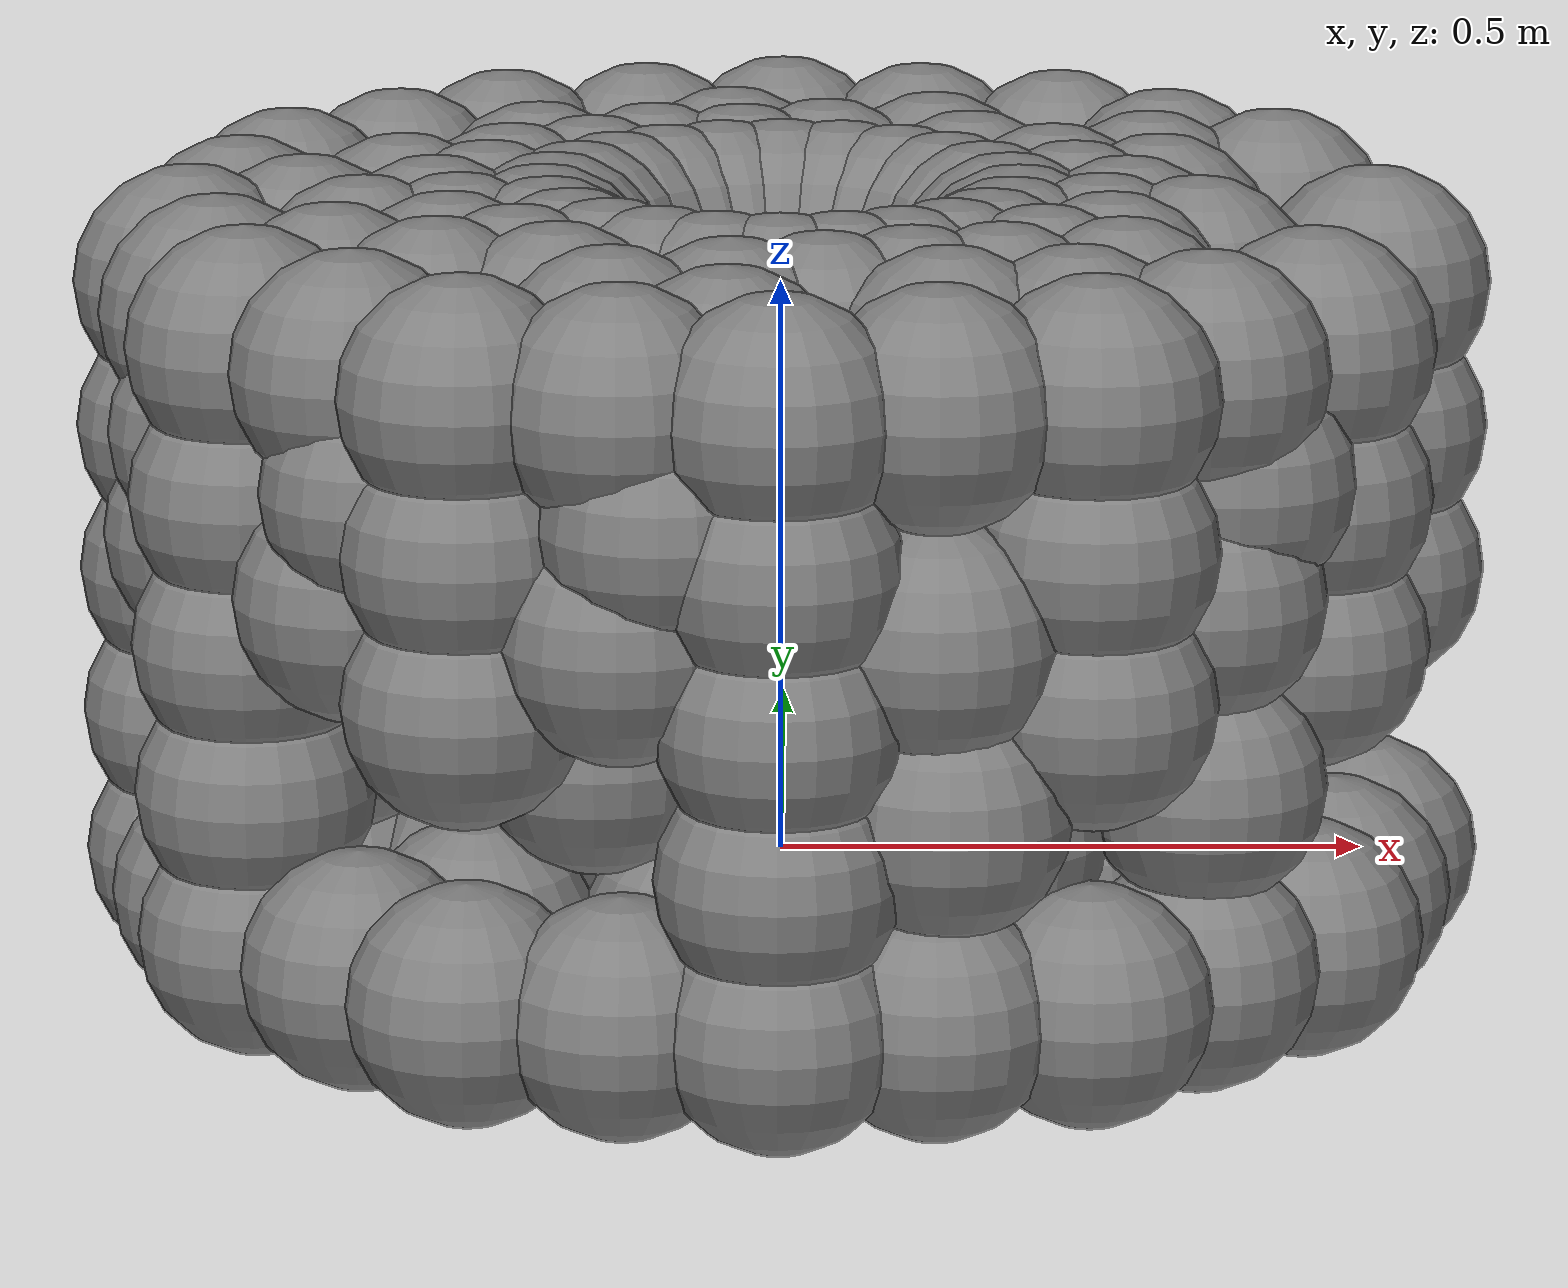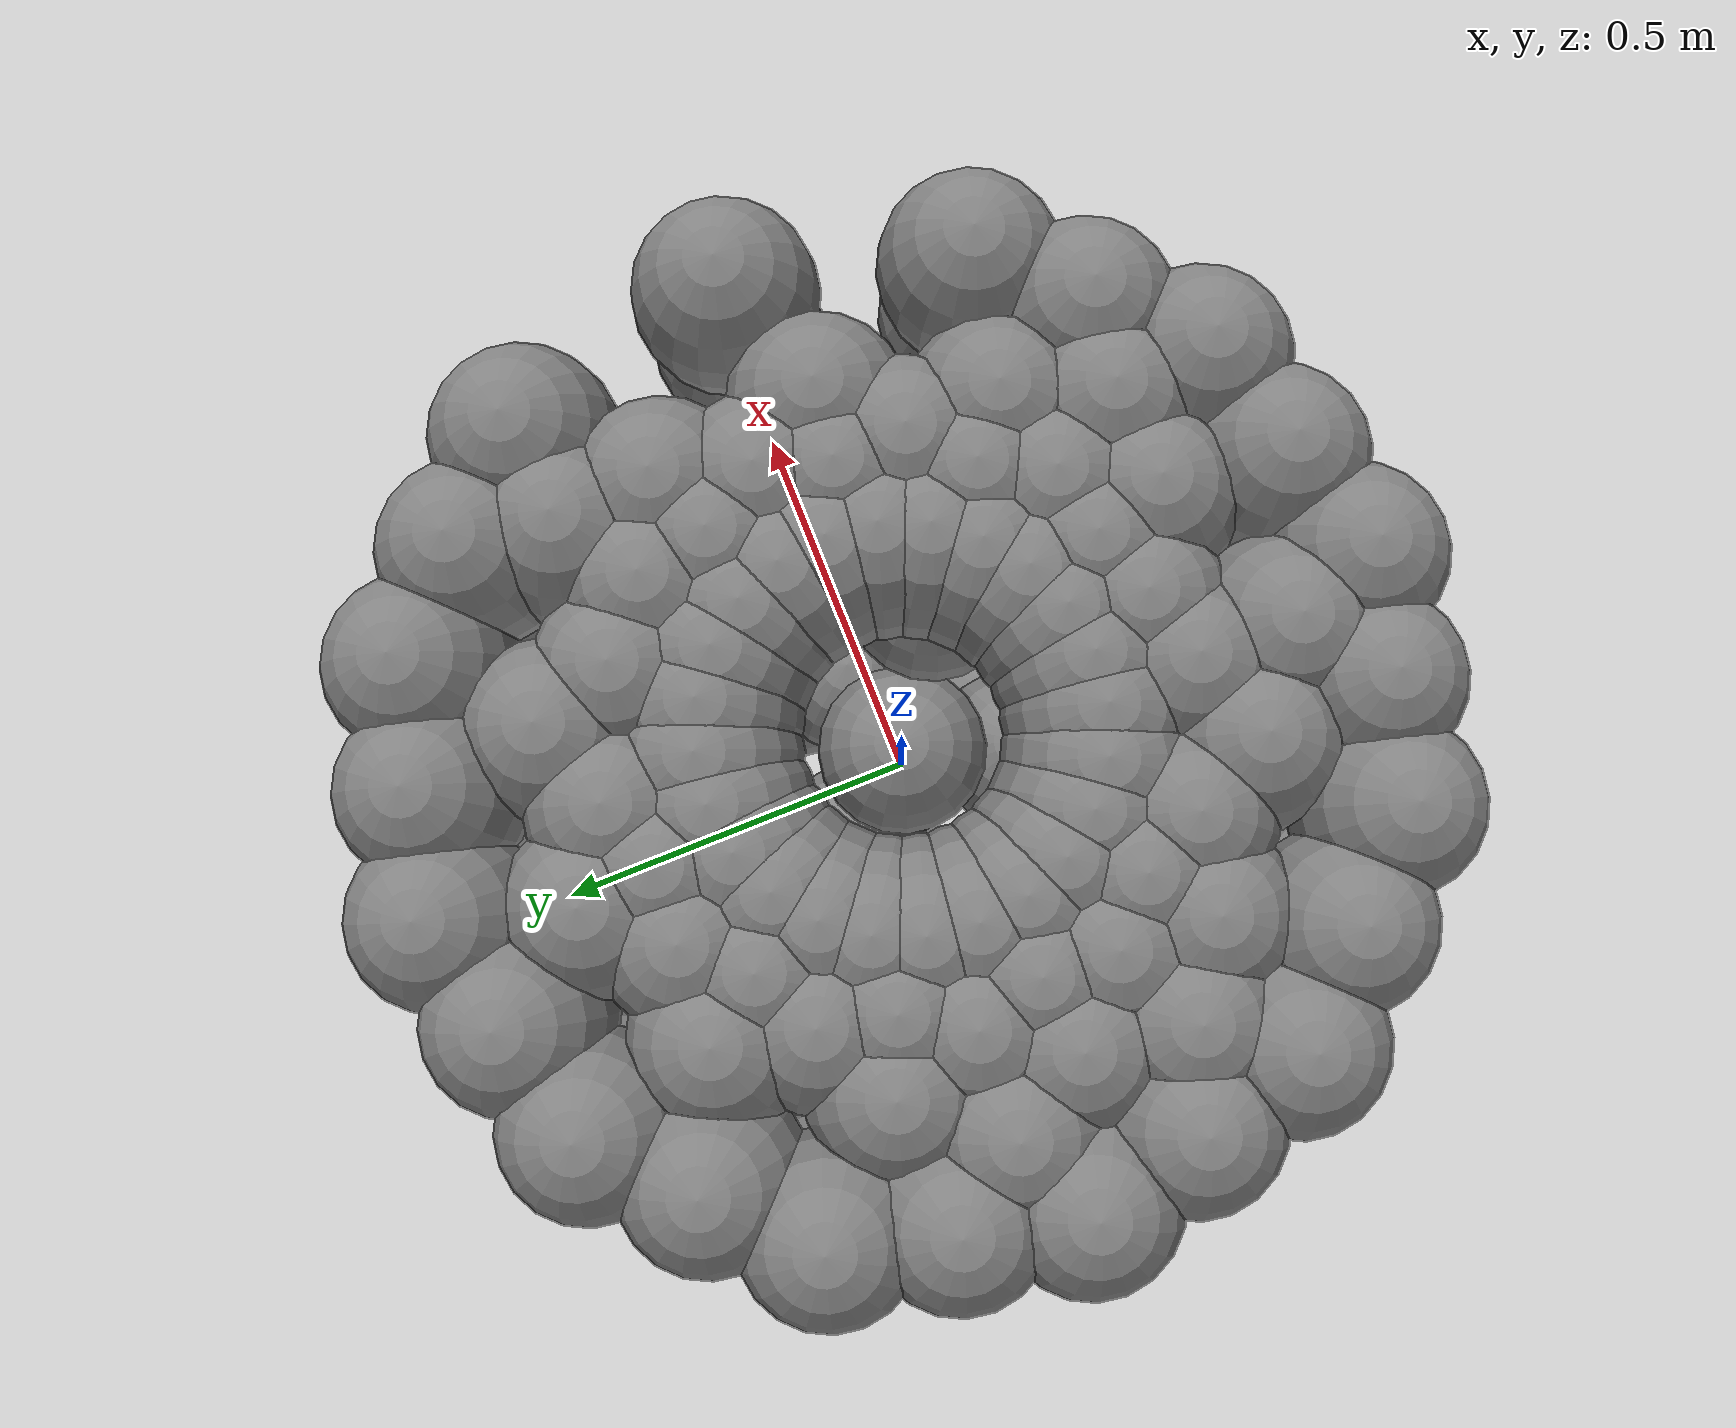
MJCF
<mujoco model="unnamed_model">
  <default>
    <default class="/"/>
  </default>
  <worldbody>
    <geom name="point_mass_0" class="/" type="sphere" size="0.10000000000000001" mass="0.01" pos="-0.17399978637695312 0.10040092468261719 0.50000041723251343"/>
    <geom name="point_mass_1" class="/" type="sphere" size="0.10000000000000001" mass="0.01" pos="0 -0 0.29800042510032654"/>
    <geom name="point_mass_2" class="/" type="sphere" size="0.10000000000000001" mass="0.01" pos="-0.14200019836425781 0.14200019836425781 0.50000041723251343"/>
    <geom name="point_mass_3" class="/" type="sphere" size="0.10000000000000001" mass="0.01" pos="-0.1939997673034668 0.052000045776367188 0.50000041723251343"/>
    <geom name="point_mass_4" class="/" type="sphere" size="0.10000000000000001" mass="0.01" pos="-0.20079994201660156 -0 0.50000041723251343"/>
    <geom name="point_mass_5" class="/" type="sphere" size="0.10000000000000001" mass="0.01" pos="-0.1939997673034668 -0.052000045776367188 0.50000041723251343"/>
    <geom name="point_mass_6" class="/" type="sphere" size="0.10000000000000001" mass="0.01" pos="-0.17399978637695312 -0.10040092468261719 0.50000041723251343"/>
    <geom name="point_mass_7" class="/" type="sphere" size="0.10000000000000001" mass="0.01" pos="-0.14200019836425781 -0.14200019836425781 0.50000041723251343"/>
    <geom name="point_mass_8" class="/" type="sphere" size="0.10000000000000001" mass="0.01" pos="-0.10039997100830078 -0.17399978637695312 0.50000041723251343"/>
    <geom name="point_mass_9" class="/" type="sphere" size="0.10000000000000001" mass="0.01" pos="-0.052000045776367188 -0.194000244140625 0.50000041723251343"/>
    <geom name="point_mass_10" class="/" type="sphere" size="0.10000000000000001" mass="0.01" pos="0 -0.20120048522949219 0.50000041723251343"/>
    <geom name="point_mass_11" class="/" type="sphere" size="0.10000000000000001" mass="0.01" pos="0.25 0.43300056457519531 0.50000041723251343"/>
    <geom name="point_mass_12" class="/" type="sphere" size="0.10000000000000001" mass="0.01" pos="0 0.5 0.50000041723251343"/>
    <geom name="point_mass_13" class="/" type="sphere" size="0.10000000000000001" mass="0.01" pos="0.052000045776367188 0.194000244140625 0.50000041723251343"/>
    <geom name="point_mass_14" class="/" type="sphere" size="0.10000000000000001" mass="0.01" pos="-0.052000045776367188 0.194000244140625 0.50000041723251343"/>
    <geom name="point_mass_15" class="/" type="sphere" size="0.10000000000000001" mass="0.01" pos="0 0.20079994201660156 0.50000041723251343"/>
    <geom name="point_mass_16" class="/" type="sphere" size="0.10000000000000001" mass="0.01" pos="-0.25 0.43300056457519531 0.50000041723251343"/>
    <geom name="point_mass_17" class="/" type="sphere" size="0.10000000000000001" mass="0.01" pos="-0.10039997100830078 0.17399978637695312 0.50000041723251343"/>
    <geom name="point_mass_18" class="/" type="sphere" size="0.10000000000000001" mass="0.01" pos="-0.43300008773803711 0.25 0.50000041723251343"/>
    <geom name="point_mass_19" class="/" type="sphere" size="0.10000000000000001" mass="0.01" pos="-0.5 -0 0.50000041723251343"/>
    <geom name="point_mass_20" class="/" type="sphere" size="0.10000000000000001" mass="0.01" pos="-0.43300008773803711 -0.25 0.50000041723251343"/>
    <geom name="point_mass_21" class="/" type="sphere" size="0.10000000000000001" mass="0.01" pos="-0.25 -0.43300056457519531 0.50000041723251343"/>
    <geom name="point_mass_22" class="/" type="sphere" size="0.10000000000000001" mass="0.01" pos="0 -0.5 0.50000041723251343"/>
    <geom name="point_mass_23" class="/" type="sphere" size="0.10000000000000001" mass="0.01" pos="0.25 -0.43300056457519531 0.50000041723251343"/>
    <geom name="point_mass_24" class="/" type="sphere" size="0.10000000000000001" mass="0.01" pos="0.052000045776367188 -0.194000244140625 0.50000041723251343"/>
    <geom name="point_mass_25" class="/" type="sphere" size="0.10000000000000001" mass="0.01" pos="0.25 -0.43300056457519531 4.1723251342773438e-07"/>
    <geom name="point_mass_26" class="/" type="sphere" size="0.10000000000000001" mass="0.01" pos="0 -0.5 4.1723251342773438e-07"/>
    <geom name="point_mass_27" class="/" type="sphere" size="0.10000000000000001" mass="0.01" pos="-0.25 -0.43300056457519531 4.1723251342773438e-07"/>
    <geom name="point_mass_28" class="/" type="sphere" size="0.10000000000000001" mass="0.01" pos="-0.43300008773803711 -0.25 4.1723251342773438e-07"/>
    <geom name="point_mass_29" class="/" type="sphere" size="0.10000000000000001" mass="0.01" pos="-0.5 -0 4.1723251342773438e-07"/>
    <geom name="point_mass_30" class="/" type="sphere" size="0.10000000000000001" mass="0.01" pos="-0.43300008773803711 0.25 4.1723251342773438e-07"/>
    <geom name="point_mass_31" class="/" type="sphere" size="0.10000000000000001" mass="0.01" pos="-0.25 0.43300056457519531 4.1723251342773438e-07"/>
    <geom name="point_mass_32" class="/" type="sphere" size="0.10000000000000001" mass="0.01" pos="0 0.5 4.1723251342773438e-07"/>
    <geom name="point_mass_33" class="/" type="sphere" size="0.10000000000000001" mass="0.01" pos="0.25 0.43300056457519531 4.1723251342773438e-07"/>
    <geom name="point_mass_34" class="/" type="sphere" size="0.10000000000000001" mass="0.01" pos="0.43300008773803711 0.25 4.1723251342773438e-07"/>
    <geom name="point_mass_35" class="/" type="sphere" size="0.10000000000000001" mass="0.01" pos="0.5 -0 4.1723251342773438e-07"/>
    <geom name="point_mass_36" class="/" type="sphere" size="0.10000000000000001" mass="0.01" pos="0.43300008773803711 -0.25 4.1723251342773438e-07"/>
    <geom name="point_mass_37" class="/" type="sphere" size="0.10000000000000001" mass="0.01" pos="0.10039997100830078 -0.17399978637695312 0.50000041723251343"/>
    <geom name="point_mass_38" class="/" type="sphere" size="0.10000000000000001" mass="0.01" pos="0.43300008773803711 -0.25 0.50000041723251343"/>
    <geom name="point_mass_39" class="/" type="sphere" size="0.10000000000000001" mass="0.01" pos="0.14200019836425781 -0.14200019836425781 0.50000041723251343"/>
    <geom name="point_mass_40" class="/" type="sphere" size="0.10000000000000001" mass="0.01" pos="0.17399978637695312 -0.10040092468261719 0.50000041723251343"/>
    <geom name="point_mass_41" class="/" type="sphere" size="0.10000000000000001" mass="0.01" pos="0.1939997673034668 -0.052000045776367188 0.50000041723251343"/>
    <geom name="point_mass_42" class="/" type="sphere" size="0.10000000000000001" mass="0.01" pos="0.5 -0 0.50000041723251343"/>
    <geom name="point_mass_43" class="/" type="sphere" size="0.10000000000000001" mass="0.01" pos="0.20079994201660156 -0 0.50000041723251343"/>
    <geom name="point_mass_44" class="/" type="sphere" size="0.10000000000000001" mass="0.01" pos="0.43300008773803711 0.25 0.50000041723251343"/>
    <geom name="point_mass_45" class="/" type="sphere" size="0.10000000000000001" mass="0.01" pos="0.1939997673034668 0.052000045776367188 0.50000041723251343"/>
    <geom name="point_mass_46" class="/" type="sphere" size="0.10000000000000001" mass="0.01" pos="0.17399978637695312 0.10040092468261719 0.50000041723251343"/>
    <geom name="point_mass_47" class="/" type="sphere" size="0.10000000000000001" mass="0.01" pos="0.14200019836425781 0.14200019836425781 0.50000041723251343"/>
    <geom name="point_mass_48" class="/" type="sphere" size="0.10000000000000001" mass="0.01" pos="0.10039997100830078 0.17399978637695312 0.50000041723251343"/>
    <geom name="point_mass_49" class="/" type="sphere" size="0.10000000000000001" mass="0.01" pos="0 -0 4.1723251342773438e-07"/>
    <geom name="point_mass_50" class="/" type="sphere" size="0.10000000000000001" mass="0.01" pos="-0.046006792679451465 0.35039997100830078 0.50000041723251343"/>
    <geom name="point_mass_51" class="/" type="sphere" size="0.10000000000000001" mass="0.01" pos="-0.2153032480662207 0.28033634838766525 0.50000041723251343"/>
    <geom name="point_mass_52" class="/" type="sphere" size="0.10000000000000001" mass="0.01" pos="-0.32663839640170034 0.13514093703698343 0.50000041723251343"/>
    <geom name="point_mass_53" class="/" type="sphere" size="0.10000000000000001" mass="0.01" pos="-0.35039997100830078 -0.046008226857323364 0.50000041723251343"/>
    <geom name="point_mass_54" class="/" type="sphere" size="0.10000000000000001" mass="0.01" pos="-0.28033539327304835 -0.21530514753628865 0.50000041723251343"/>
    <geom name="point_mass_55" class="/" type="sphere" size="0.10000000000000001" mass="0.01" pos="-0.13514256726788931 -0.32663752267311807 0.50000041723251343"/>
    <geom name="point_mass_56" class="/" type="sphere" size="0.10000000000000001" mass="0.01" pos="0.13514256726788937 -0.32663752267311807 0.50000041723251343"/>
    <geom name="point_mass_57" class="/" type="sphere" size="0.10000000000000001" mass="0.01" pos="0.28033539327304829 -0.21530514753628865 0.50000041723251343"/>
    <geom name="point_mass_58" class="/" type="sphere" size="0.10000000000000001" mass="0.01" pos="0.35039997100830078 -0.046008226857323364 0.50000041723251343"/>
    <geom name="point_mass_59" class="/" type="sphere" size="0.10000000000000001" mass="0.01" pos="0.32663839640170034 0.13514093703698343 0.50000041723251343"/>
    <geom name="point_mass_60" class="/" type="sphere" size="0.10000000000000001" mass="0.01" pos="0.13514256726788931 0.32663752267311807 0.50000041723251343"/>
    <geom name="point_mass_61" class="/" type="sphere" size="0.10000000000000001" mass="0.01" pos="-0.11367124197062077 0.27467818497706259 0.50000041723251343"/>
    <geom name="point_mass_62" class="/" type="sphere" size="0.10000000000000001" mass="0.01" pos="0.038707324138498589 0.29457797638501937 0.50000041723251343"/>
    <geom name="point_mass_63" class="/" type="sphere" size="0.10000000000000001" mass="0.01" pos="-0.23567601892933199 0.18095162514451751 0.50000041723251343"/>
    <geom name="point_mass_64" class="/" type="sphere" size="0.10000000000000001" mass="0.01" pos="-0.27467726347596999 -0.11366980488156189 0.50000041723251343"/>
    <geom name="point_mass_65" class="/" type="sphere" size="0.10000000000000001" mass="0.01" pos="-0.29457911808534953 0.038708395735159551 0.50000041723251343"/>
    <geom name="point_mass_66" class="/" type="sphere" size="0.10000000000000001" mass="0.01" pos="-0.18095029999982984 -0.23567669685270559 0.50000041723251343"/>
    <geom name="point_mass_67" class="/" type="sphere" size="0.10000000000000001" mass="0.01" pos="-0.039387370425241076 -0.29428361128182629 0.50000041723251343"/>
    <geom name="point_mass_68" class="/" type="sphere" size="0.10000000000000001" mass="0.01" pos="0.18095029999982981 -0.23567669685270559 0.50000041723251343"/>
    <geom name="point_mass_69" class="/" type="sphere" size="0.10000000000000001" mass="0.01" pos="0.27467726347597005 -0.11366980488156191 0.50000041723251343"/>
    <geom name="point_mass_70" class="/" type="sphere" size="0.10000000000000001" mass="0.01" pos="0.29457911808534953 0.038708395735159551 0.50000041723251343"/>
    <geom name="point_mass_71" class="/" type="sphere" size="0.10000000000000001" mass="0.01" pos="0.23590014760401767 0.18112403260784635 0.50000041723251343"/>
    <geom name="point_mass_72" class="/" type="sphere" size="0.10000000000000001" mass="0.01" pos="0.036218906725356506 -0.27140100840766657 0.50000041723251343"/>
    <geom name="point_mass_73" class="/" type="sphere" size="0.10000000000000001" mass="0.01" pos="0.5 0 0.25000041723251343"/>
    <geom name="point_mass_74" class="/" type="sphere" size="0.10000000000000001" mass="0.01" pos="0 -0.5 0.25000041723251343"/>
    <geom name="point_mass_75" class="/" type="sphere" size="0.10000000000000001" mass="0.01" pos="0.25 -0.43300056457519531 0.25000041723251343"/>
    <geom name="point_mass_76" class="/" type="sphere" size="0.10000000000000001" mass="0.01" pos="0.43300008773803711 -0.25 0.25000041723251343"/>
    <geom name="point_mass_77" class="/" type="sphere" size="0.10000000000000001" mass="0.01" pos="-0.43300008773803711 -0.25 0.25000041723251343"/>
    <geom name="point_mass_78" class="/" type="sphere" size="0.10000000000000001" mass="0.01" pos="0 0.5 0.25000041723251343"/>
    <geom name="point_mass_79" class="/" type="sphere" size="0.10000000000000001" mass="0.01" pos="0 -0.5 0.37500041723251343"/>
    <geom name="point_mass_80" class="/" type="sphere" size="0.10000000000000001" mass="0.01" pos="-0.25 -0.43300056457519531 0.25000041723251343"/>
    <geom name="point_mass_81" class="/" type="sphere" size="0.10000000000000001" mass="0.01" pos="0.25 -0.06697806422425856 4.1723251342773438e-07"/>
    <geom name="point_mass_82" class="/" type="sphere" size="0.10000000000000001" mass="0.01" pos="0.25 -0.43300056457519531 0.37500041723251343"/>
    <geom name="point_mass_83" class="/" type="sphere" size="0.10000000000000001" mass="0.01" pos="0.30185124873372587 -0.048421909450381745 0.23835195604629147"/>
    <geom name="point_mass_84" class="/" type="sphere" size="0.10000000000000001" mass="0.01" pos="-0.066978413269680459 -0.25 4.1723251342773438e-07"/>
    <geom name="point_mass_85" class="/" type="sphere" size="0.10000000000000001" mass="0.01" pos="-0.25 0.43300056457519531 0.25000041723251343"/>
    <geom name="point_mass_86" class="/" type="sphere" size="0.10000000000000001" mass="0.01" pos="0.25 0.43300056457519531 0.25000041723251343"/>
    <geom name="point_mass_87" class="/" type="sphere" size="0.10000000000000001" mass="0.01" pos="0.14048084713118317 0.24599430502304362 0.31253447826443592"/>
    <geom name="point_mass_88" class="/" type="sphere" size="0.10000000000000001" mass="0.01" pos="-0.43300008773803711 0.25 0.25000041723251343"/>
    <geom name="point_mass_89" class="/" type="sphere" size="0.10000000000000001" mass="0.01" pos="0.125 0.46650028228759766 0.50000041723251343"/>
    <geom name="point_mass_90" class="/" type="sphere" size="0.10000000000000001" mass="0.01" pos="0.061544966929866385 -0.29411055851237344 0.23271466600284749"/>
    <geom name="point_mass_91" class="/" type="sphere" size="0.10000000000000001" mass="0.01" pos="-0.25 -0.06697806422425856 4.1723251342773438e-07"/>
    <geom name="point_mass_92" class="/" type="sphere" size="0.10000000000000001" mass="0.01" pos="-0.2483910671288086 -0.20960668491366699 0.20350259953853292"/>
    <geom name="point_mass_93" class="/" type="sphere" size="0.10000000000000001" mass="0.01" pos="-0.125 -0.46650028228759766 0.31250041723251343"/>
    <geom name="point_mass_94" class="/" type="sphere" size="0.10000000000000001" mass="0.01" pos="-0.5 0 0.25000041723251343"/>
    <geom name="point_mass_95" class="/" type="sphere" size="0.10000000000000001" mass="0.01" pos="-0.46650004386901855 0.125 0.50000041723251343"/>
    <geom name="point_mass_96" class="/" type="sphere" size="0.10000000000000001" mass="0.01" pos="-0.18300307924651532 0.18301125017546838 4.1723251342773438e-07"/>
    <geom name="point_mass_97" class="/" type="sphere" size="0.10000000000000001" mass="0.01" pos="-0.125 -0.46650028228759766 0.50000041723251343"/>
    <geom name="point_mass_98" class="/" type="sphere" size="0.10000000000000001" mass="0.01" pos="0.27915343052789471 0.10185704385383516 0.35566878252078687"/>
    <geom name="point_mass_99" class="/" type="sphere" size="0.10000000000000001" mass="0.01" pos="-0.125 0.46650028228759766 0.50000041723251343"/>
    <geom name="point_mass_100" class="/" type="sphere" size="0.10000000000000001" mass="0.01" pos="-0.18656583487688627 0.25694559016968083 0.23137796589600651"/>
    <geom name="point_mass_101" class="/" type="sphere" size="0.10000000000000001" mass="0.01" pos="0.25 0.43300056457519531 0.37500041723251343"/>
    <geom name="point_mass_102" class="/" type="sphere" size="0.10000000000000001" mass="0.01" pos="0.43300008773803711 0.25 0.25000041723251343"/>
    <geom name="point_mass_103" class="/" type="sphere" size="0.10000000000000001" mass="0.01" pos="-0.33462738825646393 -0.029508607362558927 0.3030344603008458"/>
    <geom name="point_mass_104" class="/" type="sphere" size="0.10000000000000001" mass="0.01" pos="-0.26616674486294822 0.12235988503274363 0.3645973065620981"/>
    <geom name="point_mass_105" class="/" type="sphere" size="0.10000000000000001" mass="0.01" pos="0.5 0 0.37500041723251343"/>
    <geom name="point_mass_106" class="/" type="sphere" size="0.10000000000000001" mass="0.01" pos="-0.43300008773803711 -0.25 0.37500041723251343"/>
    <geom name="point_mass_107" class="/" type="sphere" size="0.10000000000000001" mass="0.01" pos="-0.25 0.43300056457519531 0.37500041723251343"/>
    <geom name="point_mass_108" class="/" type="sphere" size="0.10000000000000001" mass="0.01" pos="-0.048635521141228572 0.32713382996288543 0.33053548944177769"/>
    <geom name="point_mass_109" class="/" type="sphere" size="0.10000000000000001" mass="0.01" pos="-0.125 0.46650028228759766 4.1723251342773438e-07"/>
    <geom name="point_mass_110" class="/" type="sphere" size="0.10000000000000001" mass="0.01" pos="-0.34150004386901855 0.34150028228759766 4.1723251342773438e-07"/>
    <geom name="point_mass_111" class="/" type="sphere" size="0.10000000000000001" mass="0.01" pos="0.43300008773803711 -0.25 0.37500041723251343"/>
    <geom name="point_mass_112" class="/" type="sphere" size="0.10000000000000001" mass="0.01" pos="-0.13267917051255457 -0.29636534646534873 0.37628018878906422"/>
    <geom name="point_mass_113" class="/" type="sphere" size="0.10000000000000001" mass="0.01" pos="-0.125 -0.46650028228759766 4.1723251342773438e-07"/>
    <geom name="point_mass_114" class="/" type="sphere" size="0.10000000000000001" mass="0.01" pos="-0.091655939120261376 -0.47543641530244884 0.40625041723251343"/>
    <geom name="point_mass_115" class="/" type="sphere" size="0.10000000000000001" mass="0.01" pos="0.06698129385276666 0.250010748534924 4.1723251342773438e-07"/>
    <geom name="point_mass_116" class="/" type="sphere" size="0.10000000000000001" mass="0.01" pos="-0.25 -0.43300056457519531 0.37500041723251343"/>
    <geom name="point_mass_117" class="/" type="sphere" size="0.10000000000000001" mass="0.01" pos="0.15300691170806793 -0.20567579789130372 0.40050026486228935"/>
    <geom name="point_mass_118" class="/" type="sphere" size="0.10000000000000001" mass="0.01" pos="-0.34150004386901855 -0.34150028228759766 0.31250041723251343"/>
    <geom name="point_mass_119" class="/" type="sphere" size="0.10000000000000001" mass="0.01" pos="0.15849043992446235 0.091516222639368039 4.1723251342773438e-07"/>
    <geom name="point_mass_120" class="/" type="sphere" size="0.10000000000000001" mass="0.01" pos="0.43300008773803711 0.25 0.37500041723251343"/>
    <geom name="point_mass_121" class="/" type="sphere" size="0.10000000000000001" mass="0.01" pos="0.24997902031551902 0.25000283914411886 4.1723251342773438e-07"/>
    <geom name="point_mass_122" class="/" type="sphere" size="0.10000000000000001" mass="0.01" pos="0.32983866378539423 -0.015704334851889518 0.41416091760758583"/>
    <geom name="point_mass_123" class="/" type="sphere" size="0.10000000000000001" mass="0.01" pos="0.46650004386901855 -0.125 4.1723251342773438e-07"/>
    <geom name="point_mass_124" class="/" type="sphere" size="0.10000000000000001" mass="0.01" pos="-0.065927499781213483 0.22096780423581194 0.42344966344483509"/>
    <geom name="point_mass_125" class="/" type="sphere" size="0.10000000000000001" mass="0.01" pos="-0.46650004386901855 0.125 4.1723251342773438e-07"/>
    <geom name="point_mass_126" class="/" type="sphere" size="0.10000000000000001" mass="0.01" pos="-0.34150004386901855 -0.34150028228759766 0.50000041723251343"/>
    <geom name="point_mass_127" class="/" type="sphere" size="0.10000000000000001" mass="0.01" pos="-0.5 0 0.37500041723251343"/>
    <geom name="point_mass_128" class="/" type="sphere" size="0.10000000000000001" mass="0.01" pos="-0.20332269923483237 -0.14957952092914109 0.39690700147477909"/>
    <geom name="point_mass_129" class="/" type="sphere" size="0.10000000000000001" mass="0.01" pos="-0.035627232806304851 0.27042589637991332 0.50000041723251343"/>
    <geom name="point_mass_130" class="/" type="sphere" size="0.10000000000000001" mass="0.01" pos="-0.34150004386901855 0.34150028228759766 0.15848953660599818"/>
    <geom name="point_mass_131" class="/" type="sphere" size="0.10000000000000001" mass="0.01" pos="-0.46650004386901855 -0.125 0.50000041723251343"/>
    <geom name="point_mass_132" class="/" type="sphere" size="0.10000000000000001" mass="0.01" pos="0.012185737014228247 -0.37502864754956966 0.38730613974787664"/>
    <geom name="point_mass_133" class="/" type="sphere" size="0.10000000000000001" mass="0.01" pos="-0.14715703709616207 -0.34779066353562615 0.18735159660557571"/>
    <geom name="point_mass_134" class="/" type="sphere" size="0.10000000000000001" mass="0.01" pos="-0.24998925050385878 -0.2499897273684053 4.1723251342773438e-07"/>
    <geom name="point_mass_135" class="/" type="sphere" size="0.10000000000000001" mass="0.01" pos="0.011901984736698776 -0.21398376225104337 0.41235318530618681"/>
    <geom name="point_mass_136" class="/" type="sphere" size="0.10000000000000001" mass="0.01" pos="0.2521885546022205 0.1045388282905996 0.50000041723251343"/>
    <geom name="point_mass_137" class="/" type="sphere" size="0.10000000000000001" mass="0.01" pos="0.21656321400068396 -0.16603044770777381 0.50000041723251343"/>
    <geom name="point_mass_138" class="/" type="sphere" size="0.10000000000000001" mass="0.01" pos="-0.34150004386901855 -0.34150028228759766 4.1723251342773438e-07"/>
    <geom name="point_mass_139" class="/" type="sphere" size="0.10000000000000001" mass="0.01" pos="-0.31709558449632125 -0.36590480525017188 0.40625041723251343"/>
    <geom name="point_mass_140" class="/" type="sphere" size="0.10000000000000001" mass="0.01" pos="-0.3102507798611242 0.08314130854193795 4.1723251342773438e-07"/>
    <geom name="point_mass_141" class="/" type="sphere" size="0.10000000000000001" mass="0.01" pos="-0.2165632140006839 -0.16603044770777384 0.50000041723251343"/>
    <geom name="point_mass_142" class="/" type="sphere" size="0.10000000000000001" mass="0.01" pos="-0.077949604831849317 0.10187742610530688 0.15837063636025531"/>
    <geom name="point_mass_143" class="/" type="sphere" size="0.10000000000000001" mass="0.01" pos="0.28019752497711514 0.14819938812700345 0.13276698245553323"/>
    <geom name="point_mass_144" class="/" type="sphere" size="0.10000000000000001" mass="0.01" pos="-0.040490275912114113 -0.40112361295615462 0.50000041723251343"/>
    <geom name="point_mass_145" class="/" type="sphere" size="0.10000000000000001" mass="0.01" pos="-0.43300008773803711 0.25 0.37500041723251343"/>
    <geom name="point_mass_146" class="/" type="sphere" size="0.10000000000000001" mass="0.01" pos="0.27042519606046844 -0.03562567586965306 0.50000041723251343"/>
    <geom name="point_mass_147" class="/" type="sphere" size="0.10000000000000001" mass="0.01" pos="-0.30651910711443259 0.13352528432489497 0.15057377292880622"/>
    <geom name="point_mass_148" class="/" type="sphere" size="0.10000000000000001" mass="0.01" pos="-0.22350577485463427 0.0078114059321164331 0.43224787193729547"/>
    <geom name="point_mass_149" class="/" type="sphere" size="0.10000000000000001" mass="0.01" pos="-0.27042519606046844 -0.035625675869653067 0.50000041723251343"/>
    <geom name="point_mass_150" class="/" type="sphere" size="0.10000000000000001" mass="0.01" pos="0.31021404476424197 -0.16768278292282734 0.37528430620757247"/>
    <geom name="point_mass_151" class="/" type="sphere" size="0.10000000000000001" mass="0.01" pos="-0.22838543658307733 0.23897571537659679 0.43094606020797477"/>
    <geom name="point_mass_152" class="/" type="sphere" size="0.10000000000000001" mass="0.01" pos="-0.34150004386901855 0.34150028228759766 0.31250041723251343"/>
    <geom name="point_mass_153" class="/" type="sphere" size="0.10000000000000001" mass="0.01" pos="0.34150004386901855 0.34150028228759766 4.1723251342773438e-07"/>
    <geom name="point_mass_154" class="/" type="sphere" size="0.10000000000000001" mass="0.01" pos="-0.29591239745295012 -0.0877617495251313 0.41816024148779135"/>
    <geom name="point_mass_155" class="/" type="sphere" size="0.10000000000000001" mass="0.01" pos="-0.36761792595102144 -0.014693714952335494 0.42420584234848335"/>
    <geom name="point_mass_156" class="/" type="sphere" size="0.10000000000000001" mass="0.01" pos="0.192589316843716 -0.32818563445989501 0.29392439624985117"/>
    <geom name="point_mass_157" class="/" type="sphere" size="0.10000000000000001" mass="0.01" pos="0.34150004386901855 -0.34150028228759766 0.31250041723251343"/>
    <geom name="point_mass_158" class="/" type="sphere" size="0.10000000000000001" mass="0.01" pos="0.34150004386901855 -0.34150028228759766 4.1723251342773438e-07"/>
    <geom name="point_mass_159" class="/" type="sphere" size="0.10000000000000001" mass="0.01" pos="0.14434265221497738 -0.24998931439972694 4.1723251342773438e-07"/>
    <geom name="point_mass_160" class="/" type="sphere" size="0.10000000000000001" mass="0.01" pos="0.125 -0.46650028228759766 4.1723251342773438e-07"/>
    <geom name="point_mass_161" class="/" type="sphere" size="0.10000000000000001" mass="0.01" pos="0 0.5 0.37500041723251343"/>
    <geom name="point_mass_162" class="/" type="sphere" size="0.10000000000000001" mass="0.01" pos="0.125 -0.46650028228759766 0.31250041723251343"/>
    <geom name="point_mass_163" class="/" type="sphere" size="0.10000000000000001" mass="0.01" pos="-0.34150004386901855 0.34150028228759766 0.50000041723251343"/>
    <geom name="point_mass_164" class="/" type="sphere" size="0.10000000000000001" mass="0.01" pos="0.34455894067990395 -0.33844137750624803 0.15625041723251343"/>
    <geom name="point_mass_165" class="/" type="sphere" size="0.10000000000000001" mass="0.01" pos="0.34150004386901855 -0.34150028228759766 0.50000041723251343"/>
    <geom name="point_mass_166" class="/" type="sphere" size="0.10000000000000001" mass="0.01" pos="0.22775673366864785 -0.19943081508245966 0.16835977836037641"/>
    <geom name="point_mass_167" class="/" type="sphere" size="0.10000000000000001" mass="0.01" pos="0.125 -0.46650028228759766 0.50000041723251343"/>
    <geom name="point_mass_168" class="/" type="sphere" size="0.10000000000000001" mass="0.01" pos="0.36590450324171586 -0.31709575932502343 0.40625041723251343"/>
    <geom name="point_mass_169" class="/" type="sphere" size="0.10000000000000001" mass="0.01" pos="0.10731714221117274 -0.24840393440834363 0.50000041723251343"/>
    <geom name="point_mass_170" class="/" type="sphere" size="0.10000000000000001" mass="0.01" pos="0.23918908898826413 -0.32202042686793747 0.50000041723251343"/>
    <geom name="point_mass_171" class="/" type="sphere" size="0.10000000000000001" mass="0.01" pos="0.125 0.46650028228759766 0.31250041723251343"/>
    <geom name="point_mass_172" class="/" type="sphere" size="0.10000000000000001" mass="0.01" pos="-0.46650004386901855 -0.125 0.31250041723251343"/>
    <geom name="point_mass_173" class="/" type="sphere" size="0.10000000000000001" mass="0.01" pos="-0.4575638398024271 -0.15834408868944422 0.40625041723251343"/>
    <geom name="point_mass_174" class="/" type="sphere" size="0.10000000000000001" mass="0.01" pos="-0.34245455173730055 -0.15842940603108774 0.32391110848549021"/>
    <geom name="point_mass_175" class="/" type="sphere" size="0.10000000000000001" mass="0.01" pos="-0.46650004386901855 -0.125 4.1723251342773438e-07"/>
    <geom name="point_mass_176" class="/" type="sphere" size="0.10000000000000001" mass="0.01" pos="0.23629660966907362 -0.27462693726994869 0.42470309186949839"/>
    <geom name="point_mass_177" class="/" type="sphere" size="0.10000000000000001" mass="0.01" pos="0.14851740927580265 -0.09588853655219616 0.36404697292219723"/>
    <geom name="point_mass_178" class="/" type="sphere" size="0.10000000000000001" mass="0.01" pos="-0.5 0 0.12500041723251343"/>
    <geom name="point_mass_179" class="/" type="sphere" size="0.10000000000000001" mass="0.01" pos="0.12255675823692443 0.023026851766605273 0.16467787529098826"/>
    <geom name="point_mass_180" class="/" type="sphere" size="0.10000000000000001" mass="0.01" pos="0.24251137197688977 0.031899367682003792 0.42702123667596609"/>
    <geom name="point_mass_181" class="/" type="sphere" size="0.10000000000000001" mass="0.01" pos="-0.43300008773803711 -0.25 0.12500041723251343"/>
    <geom name="point_mass_182" class="/" type="sphere" size="0.10000000000000001" mass="0.01" pos="0.13401793475456869 -0.31893062436476949 0.41712161357456823"/>
    <geom name="point_mass_183" class="/" type="sphere" size="0.10000000000000001" mass="0.01" pos="-0.043812754958790785 -0.13349485526098376 0.20319690817740446"/>
    <geom name="point_mass_184" class="/" type="sphere" size="0.10000000000000001" mass="0.01" pos="-0.36648590598240249 -0.11303459189986975 0.15559131729199804"/>
    <geom name="point_mass_185" class="/" type="sphere" size="0.10000000000000001" mass="0.01" pos="-0.21940408412009305 -0.020755933524956433 0.25822938789145872"/>
    <geom name="point_mass_186" class="/" type="sphere" size="0.10000000000000001" mass="0.01" pos="0.16613287096349963 -0.35445371587778463 0.11876723665896759"/>
    <geom name="point_mass_187" class="/" type="sphere" size="0.10000000000000001" mass="0.01" pos="0.22414263447257632 -0.095438987621704413 0.43063531985166881"/>
    <geom name="point_mass_188" class="/" type="sphere" size="0.10000000000000001" mass="0.01" pos="-0.36821996339605684 -0.15943736757633695 0.50000041723251343"/>
    <geom name="point_mass_189" class="/" type="sphere" size="0.10000000000000001" mass="0.01" pos="-0.40532645729972788 0.041616512025321011 0.50000041723251343"/>
    <geom name="point_mass_190" class="/" type="sphere" size="0.10000000000000001" mass="0.01" pos="0.125 0.46650028228759766 4.1723251342773438e-07"/>
    <geom name="point_mass_191" class="/" type="sphere" size="0.10000000000000001" mass="0.01" pos="-0.31297689652988475 -0.21277677580994547 0.43258209411257803"/>
    <geom name="point_mass_192" class="/" type="sphere" size="0.10000000000000001" mass="0.01" pos="0.19629289501101238 0.1453658127312118 0.42384328530899601"/>
    <geom name="point_mass_193" class="/" type="sphere" size="0.10000000000000001" mass="0.01" pos="0.038676776678972208 -0.14433425221762158 4.1723251342773438e-07"/>
    <geom name="point_mass_194" class="/" type="sphere" size="0.10000000000000001" mass="0.01" pos="0 -0.5 0.12500041723251343"/>
    <geom name="point_mass_195" class="/" type="sphere" size="0.10000000000000001" mass="0.01" pos="-0.25214513806219285 0.10445396975957583 0.50000041723251343"/>
    <geom name="point_mass_196" class="/" type="sphere" size="0.10000000000000001" mass="0.01" pos="0.16488857030288898 0.23959406301226824 0.50000041723251343"/>
    <geom name="point_mass_197" class="/" type="sphere" size="0.10000000000000001" mass="0.01" pos="0.13438304565980397 -0.46398564724050956 0.16738649288527085"/>
    <geom name="point_mass_198" class="/" type="sphere" size="0.10000000000000001" mass="0.01" pos="-0.36689477883255617 0.039608242040962652 0.17067870501689086"/>
    <geom name="point_mass_199" class="/" type="sphere" size="0.10000000000000001" mass="0.01" pos="-0.46650004386901855 0.125 0.31250041723251343"/>
    <geom name="point_mass_200" class="/" type="sphere" size="0.10000000000000001" mass="0.01" pos="0.34150004386901855 0.34150028228759766 0.50000041723251343"/>
    <geom name="point_mass_201" class="/" type="sphere" size="0.10000000000000001" mass="0.01" pos="-0.37395158427930886 -0.029575751947817544 4.1723251342773438e-07"/>
    <geom name="point_mass_202" class="/" type="sphere" size="0.10000000000000001" mass="0.01" pos="0.34150004386901855 0.34150028228759766 0.37052217848554392"/>
    <geom name="point_mass_203" class="/" type="sphere" size="0.10000000000000001" mass="0.01" pos="0.322334205622125 0.23916574535753976 0.50000041723251343"/>
    <geom name="point_mass_204" class="/" type="sphere" size="0.10000000000000001" mass="0.01" pos="-0.16602932254951952 0.21656252516717256 0.50000041723251343"/>
  </worldbody>
</mujoco>
